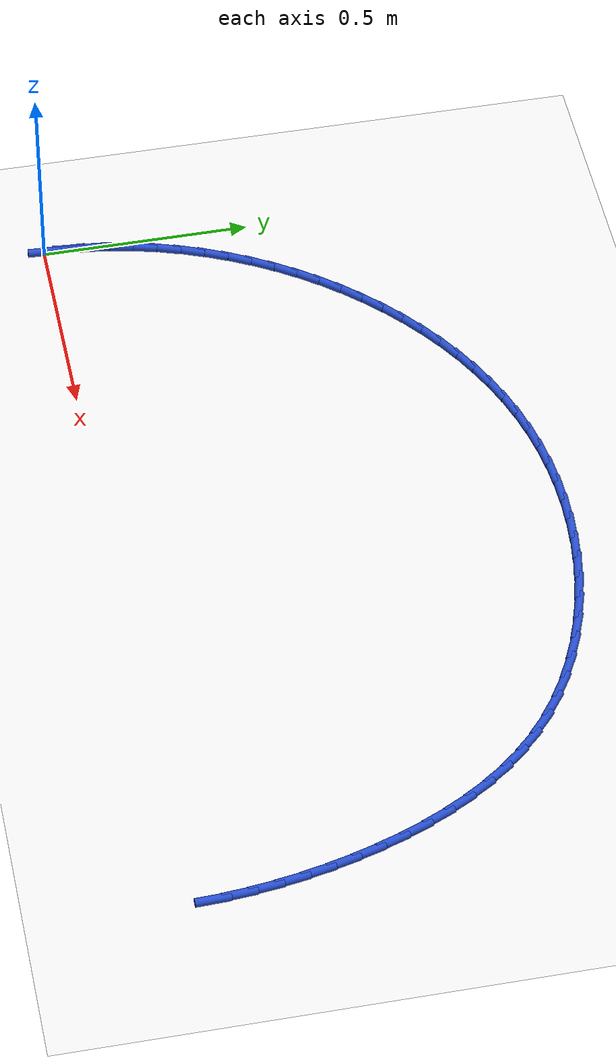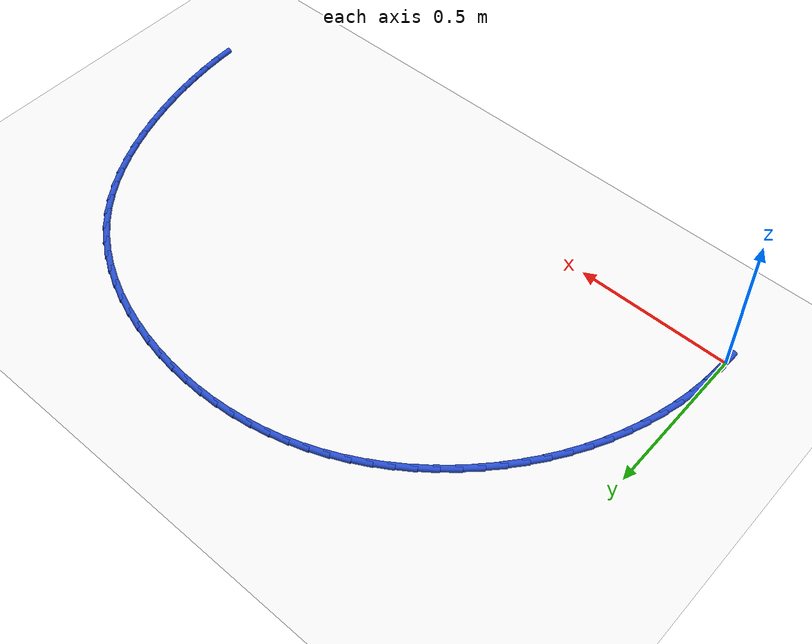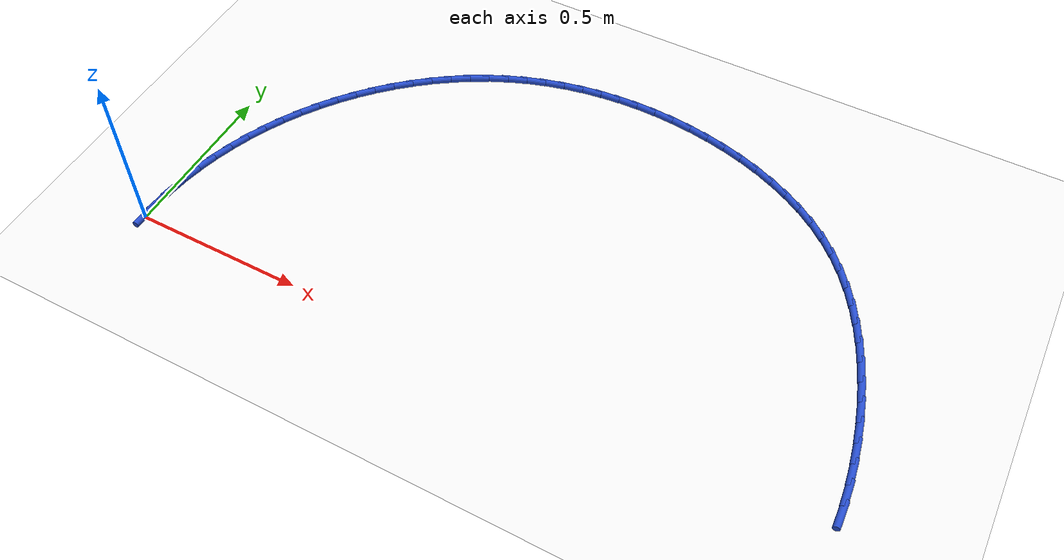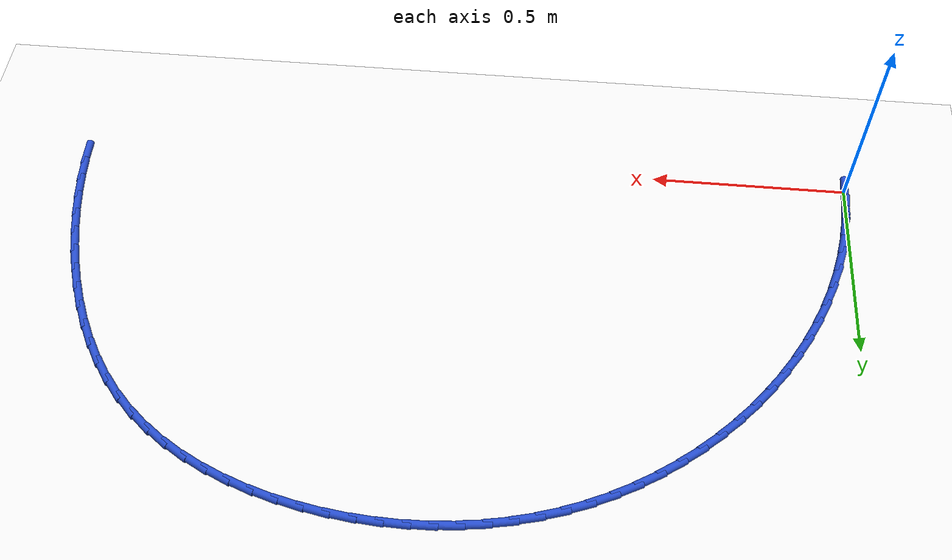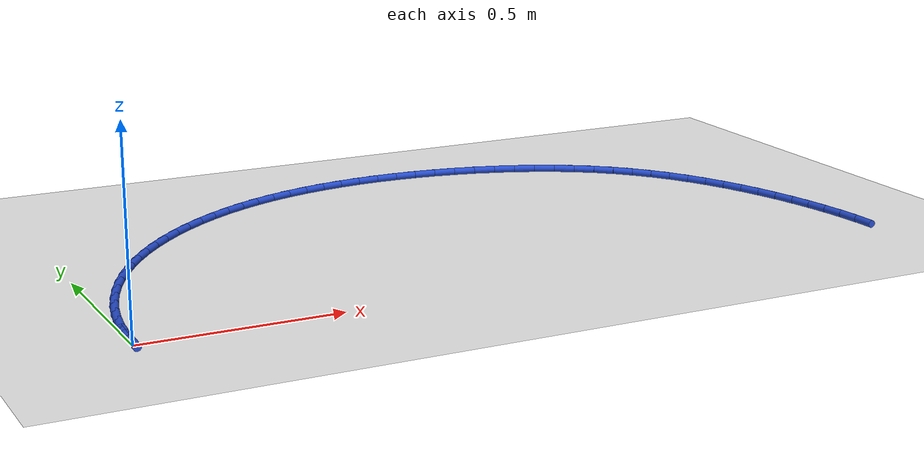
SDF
<sdf version="1.6">
 <world name="default">
  <model name="ground_plane">
   <static>1</static>
   <link name="link">
    <collision name="collision">
     <geometry><plane><normal>0 0 1</normal><size>100 100</size></plane></geometry>
     <surface><friction><ode><mu>100</mu><mu2>50</mu2></ode></friction></surface>
    </collision>
    <visual name="visual">
     <cast_shadows>0</cast_shadows>
     <geometry><plane><normal>0 0 1</normal><size>100 100</size></plane></geometry>
     <material>
      <script><uri>file://media/materials/scripts/gazebo.material</uri><name>Gazebo/WhiteGlow</name></script>
     </material>
    </visual>
   </link>
  </model>
  <model name="line">
   <link name="link_1">
    <pose>0.002093370337949315 0.059108880625451755 0.01 0 1.57 1.474895232184728</pose>
    <collision name="collision">
     <geometry><cylinder><radius>0.01</radius><length>0.08</length></cylinder></geometry>
    </collision>
    <visual name="visual">
     <material>
      <script><name>Gazebo/Blue</name><uri>file://media/materials/scripts/gazebo.material</uri></script>
     </material>
     <geometry><cylinder><radius>0.01</radius><length>0.08</length></cylinder></geometry>
    </visual>
   </link>
   <link name="link_2">
    <pose>0.007747564759442419 0.11788662340415022 0.01 0 1.57 1.415559018137217</pose>
    <collision name="collision">
     <geometry><cylinder><radius>0.01</radius><length>0.08</length></cylinder></geometry>
    </collision>
    <visual name="visual">
     <material>
      <script><name>Gazebo/Blue</name><uri>file://media/materials/scripts/gazebo.material</uri></script>
     </material>
     <geometry><cylinder><radius>0.01</radius><length>0.08</length></cylinder></geometry>
    </visual>
   </link>
   <link name="link_3">
    <pose>0.01687178192339712 0.1761896533438954 0.01 0 1.57 1.3573436069164586</pose>
    <collision name="collision">
     <geometry><cylinder><radius>0.01</radius><length>0.08</length></cylinder></geometry>
    </collision>
    <visual name="visual">
     <material>
      <script><name>Gazebo/Blue</name><uri>file://media/materials/scripts/gazebo.material</uri></script>
     </material>
     <geometry><cylinder><radius>0.01</radius><length>0.08</length></cylinder></geometry>
    </visual>
   </link>
   <link name="link_4">
    <pose>0.029375220488731136 0.23387439545248725 0.01 0 1.57 1.3001765429638668</pose>
    <collision name="collision">
     <geometry><cylinder><radius>0.01</radius><length>0.08</length></cylinder></geometry>
    </collision>
    <visual name="visual">
     <material>
      <script><name>Gazebo/Blue</name><uri>file://media/materials/scripts/gazebo.material</uri></script>
     </material>
     <geometry><cylinder><radius>0.01</radius><length>0.08</length></cylinder></geometry>
    </visual>
   </link>
   <link name="link_5">
    <pose>0.04516707911436226 0.29079727473772565 0.01 0 1.57 1.24396144172233</pose>
    <collision name="collision">
     <geometry><cylinder><radius>0.01</radius><length>0.08</length></cylinder></geometry>
    </collision>
    <visual name="visual">
     <material>
      <script><name>Gazebo/Blue</name><uri>file://media/materials/scripts/gazebo.material</uri></script>
     </material>
     <geometry><cylinder><radius>0.01</radius><length>0.08</length></cylinder></geometry>
    </visual>
   </link>
   <link name="link_6">
    <pose>0.06415655645920819 0.34681471620741045 0.01 0 1.57 1.1885828761068622</pose>
    <collision name="collision">
     <geometry><cylinder><radius>0.01</radius><length>0.08</length></cylinder></geometry>
    </collision>
    <visual name="visual">
     <material>
      <script><name>Gazebo/Blue</name><uri>file://media/materials/scripts/gazebo.material</uri></script>
     </material>
     <geometry><cylinder><radius>0.01</radius><length>0.08</length></cylinder></geometry>
    </visual>
   </link>
   <link name="link_7">
    <pose>0.08625285118218667 0.4017831448693416 0.01 0 1.57 1.1339108514112515</pose>
    <collision name="collision">
     <geometry><cylinder><radius>0.01</radius><length>0.08</length></cylinder></geometry>
    </collision>
    <visual name="visual">
     <material>
      <script><name>Gazebo/Blue</name><uri>file://media/materials/scripts/gazebo.material</uri></script>
     </material>
     <geometry><cylinder><radius>0.01</radius><length>0.08</length></cylinder></geometry>
    </visual>
   </link>
   <link name="link_8">
    <pose>0.11136516194221548 0.45555898573131903 0.01 0 1.57 1.0798048115095322</pose>
    <collision name="collision">
     <geometry><cylinder><radius>0.01</radius><length>0.08</length></cylinder></geometry>
    </collision>
    <visual name="visual">
     <material>
      <script><name>Gazebo/Blue</name><uri>file://media/materials/scripts/gazebo.material</uri></script>
     </material>
     <geometry><cylinder><radius>0.01</radius><length>0.08</length></cylinder></geometry>
    </visual>
   </link>
   <link name="link_9">
    <pose>0.13940268739821238 0.5079986638011428 0.01 0 1.57 1.0261209733647005</pose>
    <collision name="collision">
     <geometry><cylinder><radius>0.01</radius><length>0.08</length></cylinder></geometry>
    </collision>
    <visual name="visual">
     <material>
      <script><name>Gazebo/Blue</name><uri>file://media/materials/scripts/gazebo.material</uri></script>
     </material>
     <geometry><cylinder><radius>0.01</radius><length>0.08</length></cylinder></geometry>
    </visual>
   </link>
   <link name="link_10">
    <pose>0.1702742836101602 0.5589584737515709 0.01 0 1.57 0.9728790866493636</pose>
    <collision name="collision">
     <geometry><cylinder><radius>0.01</radius><length>0.08</length></cylinder></geometry>
    </collision>
    <visual name="visual">
     <material>
      <script><name>Gazebo/Blue</name><uri>file://media/materials/scripts/gazebo.material</uri></script>
     </material>
     <geometry><cylinder><radius>0.01</radius><length>0.08</length></cylinder></geometry>
    </visual>
   </link>
   <link name="link_11">
    <pose>0.20387203936900314 0.6082883314768889 0.01 0 1.57 0.9201121631127684</pose>
    <collision name="collision">
     <geometry><cylinder><radius>0.01</radius><length>0.08</length></cylinder></geometry>
    </collision>
    <visual name="visual">
     <material>
      <script><name>Gazebo/Blue</name><uri>file://media/materials/scripts/gazebo.material</uri></script>
     </material>
     <geometry><cylinder><radius>0.01</radius><length>0.08</length></cylinder></geometry>
    </visual>
   </link>
   <link name="link_12">
    <pose>0.2400640260381791 0.6558290159123945 0.01 0 1.57 0.8675822540779059</pose>
    <collision name="collision">
     <geometry><cylinder><radius>0.01</radius><length>0.08</length></cylinder></geometry>
    </collision>
    <visual name="visual">
     <material>
      <script><name>Gazebo/Blue</name><uri>file://media/materials/scripts/gazebo.material</uri></script>
     </material>
     <geometry><cylinder><radius>0.01</radius><length>0.08</length></cylinder></geometry>
    </visual>
   </link>
   <link name="link_13">
    <pose>0.27871646339620243 0.7014206015942357 0.01 0 1.57 0.8150296035655057</pose>
    <collision name="collision">
     <geometry><cylinder><radius>0.01</radius><length>0.08</length></cylinder></geometry>
    </collision>
    <visual name="visual">
     <material>
      <script><name>Gazebo/Blue</name><uri>file://media/materials/scripts/gazebo.material</uri></script>
     </material>
     <geometry><cylinder><radius>0.01</radius><length>0.08</length></cylinder></geometry>
    </visual>
   </link>
   <link name="link_14">
    <pose>0.3196955712215872 0.7449031630585605 0.01 0 1.57 0.7621947426384169</pose>
    <collision name="collision">
     <geometry><cylinder><radius>0.01</radius><length>0.08</length></cylinder></geometry>
    </collision>
    <visual name="visual">
     <material>
      <script><name>Gazebo/Blue</name><uri>file://media/materials/scripts/gazebo.material</uri></script>
     </material>
     <geometry><cylinder><radius>0.01</radius><length>0.08</length></cylinder></geometry>
    </visual>
   </link>
   <link name="link_15">
    <pose>0.36286756929284797 0.7861167748415172 0.01 0 1.57 0.7088201603738015</pose>
    <collision name="collision">
     <geometry><cylinder><radius>0.01</radius><length>0.08</length></cylinder></geometry>
    </collision>
    <visual name="visual">
     <material>
      <script><name>Gazebo/Blue</name><uri>file://media/materials/scripts/gazebo.material</uri></script>
     </material>
     <geometry><cylinder><radius>0.01</radius><length>0.08</length></cylinder></geometry>
    </visual>
   </link>
   <link name="link_16">
    <pose>0.40809867738849875 0.8249015114792535 0.01 0 1.57 0.654652326250068</pose>
    <collision name="collision">
     <geometry><cylinder><radius>0.01</radius><length>0.08</length></cylinder></geometry>
    </collision>
    <visual name="visual">
     <material>
      <script><name>Gazebo/Blue</name><uri>file://media/materials/scripts/gazebo.material</uri></script>
     </material>
     <geometry><cylinder><radius>0.01</radius><length>0.08</length></cylinder></geometry>
    </visual>
   </link>
   <link name="link_17">
    <pose>0.4552551152870542 0.8610974475079183 0.01 0 1.57 0.5994443865143182</pose>
    <collision name="collision">
     <geometry><cylinder><radius>0.01</radius><length>0.08</length></cylinder></geometry>
    </collision>
    <visual name="visual">
     <material>
      <script><name>Gazebo/Blue</name><uri>file://media/materials/scripts/gazebo.material</uri></script>
     </material>
     <geometry><cylinder><radius>0.01</radius><length>0.08</length></cylinder></geometry>
    </visual>
   </link>
   <link name="link_18">
    <pose>0.5042031027670282 0.8945446574636587 0.01 0 1.57 0.5429598564774296</pose>
    <collision name="collision">
     <geometry><cylinder><radius>0.01</radius><length>0.08</length></cylinder></geometry>
    </collision>
    <visual name="visual">
     <material>
      <script><name>Gazebo/Blue</name><uri>file://media/materials/scripts/gazebo.material</uri></script>
     </material>
     <geometry><cylinder><radius>0.01</radius><length>0.08</length></cylinder></geometry>
    </visual>
   </link>
   <link name="link_19">
    <pose>0.554808859606935 0.9250832158826233 0.01 0 1.57 0.4849776165231233</pose>
    <collision name="collision">
     <geometry><cylinder><radius>0.01</radius><length>0.08</length></cylinder></geometry>
    </collision>
    <visual name="visual">
     <material>
      <script><name>Gazebo/Blue</name><uri>file://media/materials/scripts/gazebo.material</uri></script>
     </material>
     <geometry><cylinder><radius>0.01</radius><length>0.08</length></cylinder></geometry>
    </visual>
   </link>
   <link name="link_20">
    <pose>0.6069386055852893 0.9525531973009602 0.01 0 1.57 0.425298475406195</pose>
    <collision name="collision">
     <geometry><cylinder><radius>0.01</radius><length>0.08</length></cylinder></geometry>
    </collision>
    <visual name="visual">
     <material>
      <script><name>Gazebo/Blue</name><uri>file://media/materials/scripts/gazebo.material</uri></script>
     </material>
     <geometry><cylinder><radius>0.01</radius><length>0.08</length></cylinder></geometry>
    </visual>
   </link>
   <link name="link_21">
    <pose>0.6604585604806049 0.9767946762548171 0.01 0 1.57 0.36407725344874375</pose>
    <collision name="collision">
     <geometry><cylinder><radius>0.01</radius><length>0.08</length></cylinder></geometry>
    </collision>
    <visual name="visual">
     <material>
      <script><name>Gazebo/Blue</name><uri>file://media/materials/scripts/gazebo.material</uri></script>
     </material>
     <geometry><cylinder><radius>0.01</radius><length>0.08</length></cylinder></geometry>
    </visual>
   </link>
   <link name="link_22">
    <pose>0.7152342994205986 0.9976677903340134 0.01 0 1.57 0.30325391419780523</pose>
    <collision name="collision">
     <geometry><cylinder><radius>0.01</radius><length>0.08</length></cylinder></geometry>
    </collision>
    <visual name="visual">
     <material>
      <script><name>Gazebo/Blue</name><uri>file://media/materials/scripts/gazebo.material</uri></script>
     </material>
     <geometry><cylinder><radius>0.01</radius><length>0.08</length></cylinder></geometry>
    </visual>
   </link>
   <link name="link_23">
    <pose>0.7711274019540516 1.0151570289710306 0.01 0 1.57 0.2436510105768939</pose>
    <collision name="collision">
     <geometry><cylinder><radius>0.01</radius><length>0.08</length></cylinder></geometry>
    </collision>
    <visual name="visual">
     <material>
      <script><name>Gazebo/Blue</name><uri>file://media/materials/scripts/gazebo.material</uri></script>
     </material>
     <geometry><cylinder><radius>0.01</radius><length>0.08</length></cylinder></geometry>
    </visual>
   </link>
   <link name="link_24">
    <pose>0.82799791882989 1.0292944614565496 0.01 0 1.57 0.18530686408481656</pose>
    <collision name="collision">
     <geometry><cylinder><radius>0.01</radius><length>0.08</length></cylinder></geometry>
    </collision>
    <visual name="visual">
     <material>
      <script><name>Gazebo/Blue</name><uri>file://media/materials/scripts/gazebo.material</uri></script>
     </material>
     <geometry><cylinder><radius>0.01</radius><length>0.08</length></cylinder></geometry>
    </visual>
   </link>
   <link name="link_25">
    <pose>0.8857058977094106 1.0401122531755511 0.01 0 1.57 0.1282242715463232</pose>
    <collision name="collision">
     <geometry><cylinder><radius>0.01</radius><length>0.08</length></cylinder></geometry>
    </collision>
    <visual name="visual">
     <material>
      <script><name>Gazebo/Blue</name><uri>file://media/materials/scripts/gazebo.material</uri></script>
     </material>
     <geometry><cylinder><radius>0.01</radius><length>0.08</length></cylinder></geometry>
    </visual>
   </link>
   <link name="link_26">
    <pose>0.94411138625391 1.0476425695130185 0.01 0 1.57 0.07237650291428059</pose>
    <collision name="collision">
     <geometry><cylinder><radius>0.01</radius><length>0.08</length></cylinder></geometry>
    </collision>
    <visual name="visual">
     <material>
      <script><name>Gazebo/Blue</name><uri>file://media/materials/scripts/gazebo.material</uri></script>
     </material>
     <geometry><cylinder><radius>0.01</radius><length>0.08</length></cylinder></geometry>
    </visual>
   </link>
   <link name="link_27">
    <pose>1.003074432124685 1.0519175758539323 0.01 0 1.57 0.017712027682093984</pose>
    <collision name="collision">
     <geometry><cylinder><radius>0.01</radius><length>0.08</length></cylinder></geometry>
    </collision>
    <visual name="visual">
     <material>
      <script><name>Gazebo/Blue</name><uri>file://media/materials/scripts/gazebo.material</uri></script>
     </material>
     <geometry><cylinder><radius>0.01</radius><length>0.08</length></cylinder></geometry>
    </visual>
   </link>
   <link name="link_28">
    <pose>1.0624550829830322 1.052969437583275 0.01 0 1.57 -0.03584080252498932</pose>
    <collision name="collision">
     <geometry><cylinder><radius>0.01</radius><length>0.08</length></cylinder></geometry>
    </collision>
    <visual name="visual">
     <material>
      <script><name>Gazebo/Blue</name><uri>file://media/materials/scripts/gazebo.material</uri></script>
     </material>
     <geometry><cylinder><radius>0.01</radius><length>0.08</length></cylinder></geometry>
    </visual>
   </link>
   <link name="link_29">
    <pose>1.122113386490249 1.0508303200860287 0.01 0 1.57 -0.08837729824327753</pose>
    <collision name="collision">
     <geometry><cylinder><radius>0.01</radius><length>0.08</length></cylinder></geometry>
    </collision>
    <visual name="visual">
     <material>
      <script><name>Gazebo/Blue</name><uri>file://media/materials/scripts/gazebo.material</uri></script>
     </material>
     <geometry><cylinder><radius>0.01</radius><length>0.08</length></cylinder></geometry>
    </visual>
   </link>
   <link name="link_30">
    <pose>1.1819083036136233 1.0455320054289883 0.01 0 1.57 -0.14060715366572585</pose>
    <collision name="collision">
     <geometry><cylinder><radius>0.01</radius><length>0.08</length></cylinder></geometry>
    </collision>
    <visual name="visual">
     <material>
      <script><name>Gazebo/Blue</name><uri>file://media/materials/scripts/gazebo.material</uri></script>
     </material>
     <geometry><cylinder><radius>0.01</radius><length>0.08</length></cylinder></geometry>
    </visual>
   </link>
   <link name="link_31">
    <pose>1.241623765331537 1.0370798097565697 0.01 0 1.57 -0.19389690409843655</pose>
    <collision name="collision">
     <geometry><cylinder><radius>0.01</radius><length>0.08</length></cylinder></geometry>
    </collision>
    <visual name="visual">
     <material>
      <script><name>Gazebo/Blue</name><uri>file://media/materials/scripts/gazebo.material</uri></script>
     </material>
     <geometry><cylinder><radius>0.01</radius><length>0.08</length></cylinder></geometry>
    </visual>
   </link>
   <link name="link_32">
    <pose>1.3009213724712616 1.0254358987298813 0.01 0 1.57 -0.24891297402499477</pose>
    <collision name="collision">
     <geometry><cylinder><radius>0.01</radius><length>0.08</length></cylinder></geometry>
    </collision>
    <visual name="visual">
     <material>
      <script><name>Gazebo/Blue</name><uri>file://media/materials/scripts/gazebo.material</uri></script>
     </material>
     <geometry><cylinder><radius>0.01</radius><length>0.08</length></cylinder></geometry>
    </visual>
   </link>
   <link name="link_33">
    <pose>1.3594514646106912 1.0105584657403255 0.01 0 1.57 -0.30623308277684874</pose>
    <collision name="collision">
     <geometry><cylinder><radius>0.01</radius><length>0.08</length></cylinder></geometry>
    </collision>
    <visual name="visual">
     <material>
      <script><name>Gazebo/Blue</name><uri>file://media/materials/scripts/gazebo.material</uri></script>
     </material>
     <geometry><cylinder><radius>0.01</radius><length>0.08</length></cylinder></geometry>
    </visual>
   </link>
   <link name="link_34">
    <pose>1.4168643813277177 0.9924057041793037 0.01 0 1.57 -0.3664289135465615</pose>
    <collision name="collision">
     <geometry><cylinder><radius>0.01</radius><length>0.08</length></cylinder></geometry>
    </collision>
    <visual name="visual">
     <material>
      <script><name>Gazebo/Blue</name><uri>file://media/materials/scripts/gazebo.material</uri></script>
     </material>
     <geometry><cylinder><radius>0.01</radius><length>0.08</length></cylinder></geometry>
    </visual>
   </link>
   <link name="link_35">
    <pose>1.472810462200234 0.9709358074382183 0.01 0 1.57 -0.43005911534222446</pose>
    <collision name="collision">
     <geometry><cylinder><radius>0.01</radius><length>0.08</length></cylinder></geometry>
    </collision>
    <visual name="visual">
     <material>
      <script><name>Gazebo/Blue</name><uri>file://media/materials/scripts/gazebo.material</uri></script>
     </material>
     <geometry><cylinder><radius>0.01</radius><length>0.08</length></cylinder></geometry>
    </visual>
   </link>
   <link name="link_36">
    <pose>1.5269400468061336 0.9461069689084717 0.01 0 1.57 -0.49765285924442015</pose>
    <collision name="collision">
     <geometry><cylinder><radius>0.01</radius><length>0.08</length></cylinder></geometry>
    </collision>
    <visual name="visual">
     <material>
      <script><name>Gazebo/Blue</name><uri>file://media/materials/scripts/gazebo.material</uri></script>
     </material>
     <geometry><cylinder><radius>0.01</radius><length>0.08</length></cylinder></geometry>
    </visual>
   </link>
   <link name="link_37">
    <pose>1.5789034747233082 0.9178773819814655 0.01 0 1.57 -0.5696814044178212</pose>
    <collision name="collision">
     <geometry><cylinder><radius>0.01</radius><length>0.08</length></cylinder></geometry>
    </collision>
    <visual name="visual">
     <material>
      <script><name>Gazebo/Blue</name><uri>file://media/materials/scripts/gazebo.material</uri></script>
     </material>
     <geometry><cylinder><radius>0.01</radius><length>0.08</length></cylinder></geometry>
    </visual>
   </link>
   <link name="link_38">
    <pose>1.628351085529651 0.886205240048602 0.01 0 1.57 -0.6465155625348784</pose>
    <collision name="collision">
     <geometry><cylinder><radius>0.01</radius><length>0.08</length></cylinder></geometry>
    </collision>
    <visual name="visual">
     <material>
      <script><name>Gazebo/Blue</name><uri>file://media/materials/scripts/gazebo.material</uri></script>
     </material>
     <geometry><cylinder><radius>0.01</radius><length>0.08</length></cylinder></geometry>
    </visual>
   </link>
   <link name="link_39">
    <pose>1.674933218803055 0.8510487365012835 0.01 0 1.57 -0.7283687145205421</pose>
    <collision name="collision">
     <geometry><cylinder><radius>0.01</radius><length>0.08</length></cylinder></geometry>
    </collision>
    <visual name="visual">
     <material>
      <script><name>Gazebo/Blue</name><uri>file://media/materials/scripts/gazebo.material</uri></script>
     </material>
     <geometry><cylinder><radius>0.01</radius><length>0.08</length></cylinder></geometry>
    </visual>
   </link>
   <link name="link_40">
    <pose>1.7183002158915546 0.8123660661955533 0.01 0 1.57 -0.8132753796607589</pose>
    <collision name="collision">
     <geometry><cylinder><radius>0.01</radius><length>0.08</length></cylinder></geometry>
    </collision>
    <visual name="visual">
     <material>
      <script><name>Gazebo/Blue</name><uri>file://media/materials/scripts/gazebo.material</uri></script>
     </material>
     <geometry><cylinder><radius>0.01</radius><length>0.08</length></cylinder></geometry>
    </visual>
   </link>
   <link name="link_41">
    <pose>1.7581899849803915 0.7701878780779688 0.01 0 1.57 -0.8937582969812574</pose>
    <collision name="collision">
     <geometry><cylinder><radius>0.01</radius><length>0.08</length></cylinder></geometry>
    </collision>
    <visual name="visual">
     <material>
      <script><name>Gazebo/Blue</name><uri>file://media/materials/scripts/gazebo.material</uri></script>
     </material>
     <geometry><cylinder><radius>0.01</radius><length>0.08</length></cylinder></geometry>
    </visual>
   </link>
   <link name="link_42">
    <pose>1.794662502245904 0.7248113048933245 0.01 0 1.57 -0.9679406259930218</pose>
    <collision name="collision">
     <geometry><cylinder><radius>0.01</radius><length>0.08</length></cylinder></geometry>
    </collision>
    <visual name="visual">
     <material>
      <script><name>Gazebo/Blue</name><uri>file://media/materials/scripts/gazebo.material</uri></script>
     </material>
     <geometry><cylinder><radius>0.01</radius><length>0.08</length></cylinder></geometry>
    </visual>
   </link>
   <link name="link_43">
    <pose>1.8278517701989991 0.6765947298656626 0.01 0 1.57 -1.0358902001114063</pose>
    <collision name="collision">
     <geometry><cylinder><radius>0.01</radius><length>0.08</length></cylinder></geometry>
    </collision>
    <visual name="visual">
     <material>
      <script><name>Gazebo/Blue</name><uri>file://media/materials/scripts/gazebo.material</uri></script>
     </material>
     <geometry><cylinder><radius>0.01</radius><length>0.08</length></cylinder></geometry>
    </visual>
   </link>
   <link name="link_44">
    <pose>1.8578917913505792 0.6258965362190233 0.01 0 1.57 -1.0978918285659744</pose>
    <collision name="collision">
     <geometry><cylinder><radius>0.01</radius><length>0.08</length></cylinder></geometry>
    </collision>
    <visual name="visual">
     <material>
      <script><name>Gazebo/Blue</name><uri>file://media/materials/scripts/gazebo.material</uri></script>
     </material>
     <geometry><cylinder><radius>0.01</radius><length>0.08</length></cylinder></geometry>
    </visual>
   </link>
   <link name="link_45">
    <pose>1.8849165682115505 0.5730751071774489 0.01 0 1.57 -1.154363792381995</pose>
    <collision name="collision">
     <geometry><cylinder><radius>0.01</radius><length>0.08</length></cylinder></geometry>
    </collision>
    <visual name="visual">
     <material>
      <script><name>Gazebo/Blue</name><uri>file://media/materials/scripts/gazebo.material</uri></script>
     </material>
     <geometry><cylinder><radius>0.01</radius><length>0.08</length></cylinder></geometry>
    </visual>
   </link>
   <link name="link_46">
    <pose>1.9090601032928174 0.5184888259649804 0.01 0 1.57 -1.2057927290544426</pose>
    <collision name="collision">
     <geometry><cylinder><radius>0.01</radius><length>0.08</length></cylinder></geometry>
    </collision>
    <visual name="visual">
     <material>
      <script><name>Gazebo/Blue</name><uri>file://media/materials/scripts/gazebo.material</uri></script>
     </material>
     <geometry><cylinder><radius>0.01</radius><length>0.08</length></cylinder></geometry>
    </visual>
   </link>
   <link name="link_47">
    <pose>1.9304563991052857 0.46249607580565927 0.01 0 1.57 -1.252687875534893</pose>
    <collision name="collision">
     <geometry><cylinder><radius>0.01</radius><length>0.08</length></cylinder></geometry>
    </collision>
    <visual name="visual">
     <material>
      <script><name>Gazebo/Blue</name><uri>file://media/materials/scripts/gazebo.material</uri></script>
     </material>
     <geometry><cylinder><radius>0.01</radius><length>0.08</length></cylinder></geometry>
    </visual>
   </link>
   <link name="link_48">
    <pose>1.9492394581598584 0.4054552399235267 0.01 0 1.57 -1.2955519311707935</pose>
    <collision name="collision">
     <geometry><cylinder><radius>0.01</radius><length>0.08</length></cylinder></geometry>
    </collision>
    <visual name="visual">
     <material>
      <script><name>Gazebo/Blue</name><uri>file://media/materials/scripts/gazebo.material</uri></script>
     </material>
     <geometry><cylinder><radius>0.01</radius><length>0.08</length></cylinder></geometry>
    </visual>
   </link>
   <link name="link_49">
    <pose>1.9655432829674415 0.347724701542624 0.01 0 1.57 -1.3353577125349736</pose>
    <collision name="collision">
     <geometry><cylinder><radius>0.01</radius><length>0.08</length></cylinder></geometry>
    </collision>
    <visual name="visual">
     <material>
      <script><name>Gazebo/Blue</name><uri>file://media/materials/scripts/gazebo.material</uri></script>
     </material>
     <geometry><cylinder><radius>0.01</radius><length>0.08</length></cylinder></geometry>
    </visual>
   </link>
   <link name="link_50">
    <pose>1.9794811585021699 0.2896229873181736 0.01 0 1.57 -1.3748828231110566</pose>
    <collision name="collision">
     <geometry><cylinder><radius>0.01</radius><length>0.08</length></cylinder></geometry>
    </collision>
    <visual name="visual">
     <material>
      <script><name>Gazebo/Blue</name><uri>file://media/materials/scripts/gazebo.material</uri></script>
     </material>
     <geometry><cylinder><radius>0.01</radius><length>0.08</length></cylinder></geometry>
    </visual>
   </link>
   <link name="link_51">
    <pose>1.991062195549371 0.23126821273820922 0.01 0 1.57 -1.4149361432983993</pose>
    <collision name="collision">
     <geometry><cylinder><radius>0.01</radius><length>0.08</length></cylinder></geometry>
    </collision>
    <visual name="visual">
     <material>
      <script><name>Gazebo/Blue</name><uri>file://media/materials/scripts/gazebo.material</uri></script>
     </material>
     <geometry><cylinder><radius>0.01</radius><length>0.08</length></cylinder></geometry>
    </visual>
   </link>
   <link name="link_52">
    <pose>2.000262833188299 0.17271563919203622 0.01 0 1.57 -1.4555136915897493</pose>
    <collision name="collision">
     <geometry><cylinder><radius>0.01</radius><length>0.08</length></cylinder></geometry>
    </collision>
    <visual name="visual">
     <material>
      <script><name>Gazebo/Blue</name><uri>file://media/materials/scripts/gazebo.material</uri></script>
     </material>
     <geometry><cylinder><radius>0.01</radius><length>0.08</length></cylinder></geometry>
    </visual>
   </link>
   <link name="link_53">
    <pose>2.0070594989651616 0.11402050588158895 0.01 0 1.57 -1.4966057817604432</pose>
    <collision name="collision">
     <geometry><cylinder><radius>0.01</radius><length>0.08</length></cylinder></geometry>
    </collision>
    <visual name="visual">
     <material>
      <script><name>Gazebo/Blue</name><uri>file://media/materials/scripts/gazebo.material</uri></script>
     </material>
     <geometry><cylinder><radius>0.01</radius><length>0.08</length></cylinder></geometry>
    </visual>
   </link>
   <link name="link_54">
    <pose>2.011428620426164 0.055238052008801275 0.01 0 1.57 -1.5381968138283284</pose>
    <collision name="collision">
     <geometry><cylinder><radius>0.01</radius><length>0.08</length></cylinder></geometry>
    </collision>
    <visual name="visual">
     <material>
      <script><name>Gazebo/Blue</name><uri>file://media/materials/scripts/gazebo.material</uri></script>
     </material>
     <geometry><cylinder><radius>0.01</radius><length>0.08</length></cylinder></geometry>
    </visual>
   </link>
   <link name="link_110">
    <pose>2.7755575615628914e-17 1.3877787807814457e-16 0.01 0 1.57 1.5349752951945916</pose>
    <collision name="collision">
     <geometry><cylinder><radius>0.01</radius><length>0.08</length></cylinder></geometry>
    </collision>
    <visual name="visual">
     <material>
      <script><name>Gazebo/Blue</name><uri>file://media/materials/scripts/gazebo.material</uri></script>
     </material>
     <geometry><cylinder><radius>0.01</radius><length>0.08</length></cylinder></geometry>
    </visual>
   </link>
   <link name="link_111">
    <pose>0.0021175496906569134 0.05908941786213852 0.01 0 1.57 1.534975295194592</pose>
    <collision name="collision">
     <geometry><cylinder><radius>0.01</radius><length>0.08</length></cylinder></geometry>
    </collision>
    <visual name="visual">
     <material>
      <script><name>Gazebo/Blue</name><uri>file://media/materials/scripts/gazebo.material</uri></script>
     </material>
     <geometry><cylinder><radius>0.01</radius><length>0.08</length></cylinder></geometry>
    </visual>
   </link>
  </model>
 </world>
</sdf>
